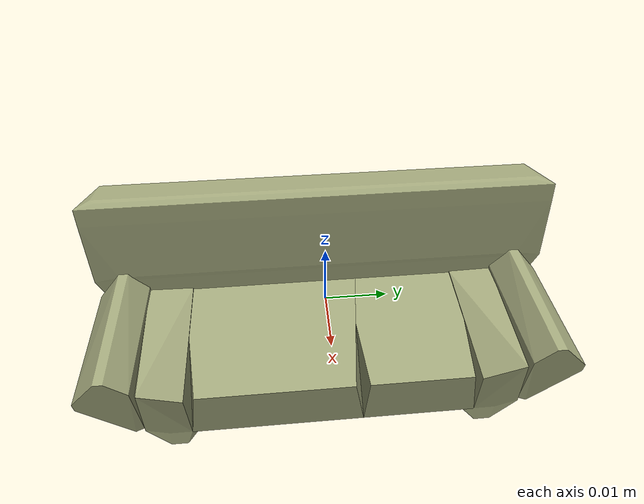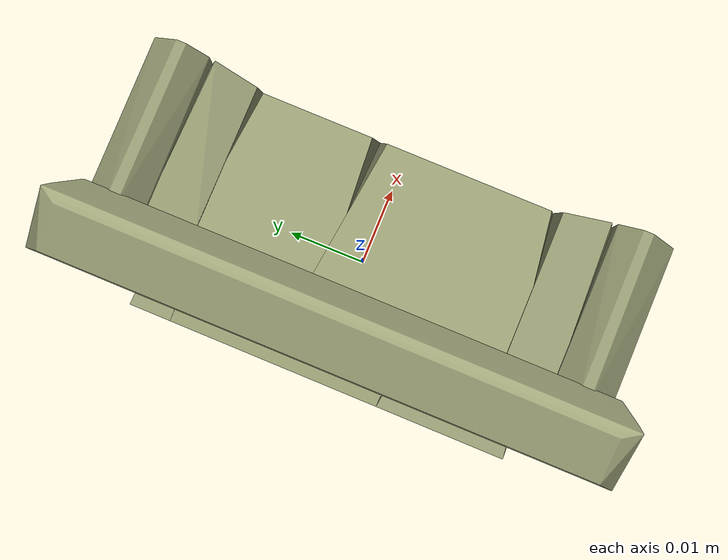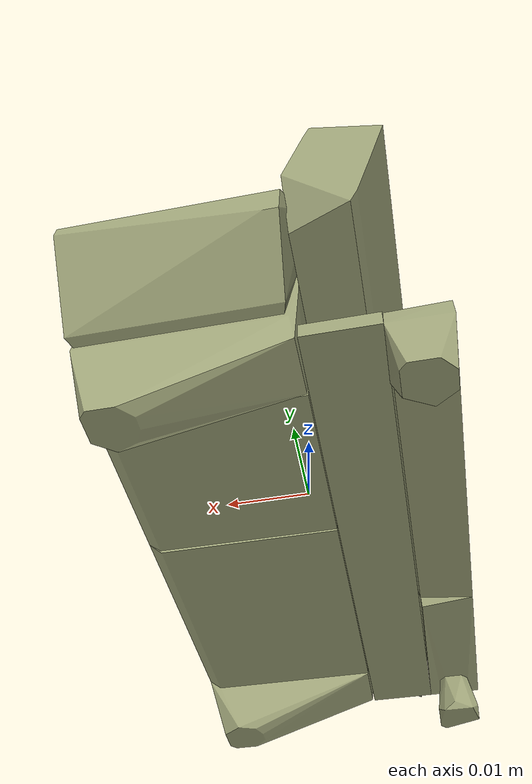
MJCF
<mujoco model="shapenetsem17">
  <asset>
    <mesh file="meshes/shapenetsem17/shapenetsem17_0.stl" name="shapenetsem17_0" scale="0.8 0.8 0.8"/>
    <mesh file="meshes/shapenetsem17/shapenetsem17_1.stl" name="shapenetsem17_1" scale="0.8 0.8 0.8"/>
    <mesh file="meshes/shapenetsem17/shapenetsem17_2.stl" name="shapenetsem17_2" scale="0.8 0.8 0.8"/>
    <mesh file="meshes/shapenetsem17/shapenetsem17_3.stl" name="shapenetsem17_3" scale="0.8 0.8 0.8"/>
    <mesh file="meshes/shapenetsem17/shapenetsem17_4.stl" name="shapenetsem17_4" scale="0.8 0.8 0.8"/>
    <mesh file="meshes/shapenetsem17/shapenetsem17_5.stl" name="shapenetsem17_5" scale="0.8 0.8 0.8"/>
    <mesh file="meshes/shapenetsem17/shapenetsem17_6.stl" name="shapenetsem17_6" scale="0.8 0.8 0.8"/>
    <mesh file="meshes/shapenetsem17/shapenetsem17_7.stl" name="shapenetsem17_7" scale="0.8 0.8 0.8"/>
    <mesh file="meshes/shapenetsem17/shapenetsem17_8.stl" name="shapenetsem17_8" scale="0.8 0.8 0.8"/>
    <mesh file="meshes/shapenetsem17/shapenetsem17_9.stl" name="shapenetsem17_9" scale="0.8 0.8 0.8"/>
    <mesh file="meshes/shapenetsem17/shapenetsem17_10.stl" name="shapenetsem17_10" scale="0.8 0.8 0.8"/>
    <mesh file="meshes/shapenetsem17/shapenetsem17_11.stl" name="shapenetsem17_11" scale="0.8 0.8 0.8"/>
  </asset>
  <worldbody>
    <body>
      <body name="collision">
        <geom pos="0 0 0" mesh="shapenetsem17_0" type="mesh" solimp="0.998 0.998 0.001" solref="0.001 1" density="100" friction="0.95 0.3 0.1" rgba="0.63 0.65 0.48 1" group="1" condim="4"/>
        <geom pos="0 0 0" mesh="shapenetsem17_1" type="mesh" solimp="0.998 0.998 0.001" solref="0.001 1" density="100" friction="0.95 0.3 0.1" rgba="0.63 0.65 0.48 1" group="1" condim="4"/>
        <geom pos="0 0 0" mesh="shapenetsem17_2" type="mesh" solimp="0.998 0.998 0.001" solref="0.001 1" density="100" friction="0.95 0.3 0.1" rgba="0.63 0.65 0.48 1" group="1" condim="4"/>
        <geom pos="0 0 0" mesh="shapenetsem17_3" type="mesh" solimp="0.998 0.998 0.001" solref="0.001 1" density="100" friction="0.95 0.3 0.1" rgba="0.63 0.65 0.48 1" group="1" condim="4"/>
        <geom pos="0 0 0" mesh="shapenetsem17_4" type="mesh" solimp="0.998 0.998 0.001" solref="0.001 1" density="100" friction="0.95 0.3 0.1" rgba="0.63 0.65 0.48 1" group="1" condim="4"/>
        <geom pos="0 0 0" mesh="shapenetsem17_5" type="mesh" solimp="0.998 0.998 0.001" solref="0.001 1" density="100" friction="0.95 0.3 0.1" rgba="0.63 0.65 0.48 1" group="1" condim="4"/>
        <geom pos="0 0 0" mesh="shapenetsem17_6" type="mesh" solimp="0.998 0.998 0.001" solref="0.001 1" density="100" friction="0.95 0.3 0.1" rgba="0.63 0.65 0.48 1" group="1" condim="4"/>
        <geom pos="0 0 0" mesh="shapenetsem17_7" type="mesh" solimp="0.998 0.998 0.001" solref="0.001 1" density="100" friction="0.95 0.3 0.1" rgba="0.63 0.65 0.48 1" group="1" condim="4"/>
        <geom pos="0 0 0" mesh="shapenetsem17_8" type="mesh" solimp="0.998 0.998 0.001" solref="0.001 1" density="100" friction="0.95 0.3 0.1" rgba="0.63 0.65 0.48 1" group="1" condim="4"/>
        <geom pos="0 0 0" mesh="shapenetsem17_9" type="mesh" solimp="0.998 0.998 0.001" solref="0.001 1" density="100" friction="0.95 0.3 0.1" rgba="0.63 0.65 0.48 1" group="1" condim="4"/>
        <geom pos="0 0 0" mesh="shapenetsem17_10" type="mesh" solimp="0.998 0.998 0.001" solref="0.001 1" density="100" friction="0.95 0.3 0.1" rgba="0.63 0.65 0.48 1" group="1" condim="4"/>
        <geom pos="0 0 0" mesh="shapenetsem17_11" type="mesh" solimp="0.998 0.998 0.001" solref="0.001 1" density="100" friction="0.95 0.3 0.1" rgba="0.63 0.65 0.48 1" group="1" condim="4"/>
      </body>
      <body name="visual">
        <geom pos="0 0 0" mesh="shapenetsem17_0" type="mesh" rgba="0.63 0.65 0.48 1" conaffinity="0" contype="0" group="0" mass="0.0001"/>
        <geom pos="0 0 0" mesh="shapenetsem17_1" type="mesh" rgba="0.63 0.65 0.48 1" conaffinity="0" contype="0" group="0" mass="0.0001"/>
        <geom pos="0 0 0" mesh="shapenetsem17_2" type="mesh" rgba="0.63 0.65 0.48 1" conaffinity="0" contype="0" group="0" mass="0.0001"/>
        <geom pos="0 0 0" mesh="shapenetsem17_3" type="mesh" rgba="0.63 0.65 0.48 1" conaffinity="0" contype="0" group="0" mass="0.0001"/>
        <geom pos="0 0 0" mesh="shapenetsem17_4" type="mesh" rgba="0.63 0.65 0.48 1" conaffinity="0" contype="0" group="0" mass="0.0001"/>
        <geom pos="0 0 0" mesh="shapenetsem17_5" type="mesh" rgba="0.63 0.65 0.48 1" conaffinity="0" contype="0" group="0" mass="0.0001"/>
        <geom pos="0 0 0" mesh="shapenetsem17_6" type="mesh" rgba="0.63 0.65 0.48 1" conaffinity="0" contype="0" group="0" mass="0.0001"/>
        <geom pos="0 0 0" mesh="shapenetsem17_7" type="mesh" rgba="0.63 0.65 0.48 1" conaffinity="0" contype="0" group="0" mass="0.0001"/>
        <geom pos="0 0 0" mesh="shapenetsem17_8" type="mesh" rgba="0.63 0.65 0.48 1" conaffinity="0" contype="0" group="0" mass="0.0001"/>
        <geom pos="0 0 0" mesh="shapenetsem17_9" type="mesh" rgba="0.63 0.65 0.48 1" conaffinity="0" contype="0" group="0" mass="0.0001"/>
        <geom pos="0 0 0" mesh="shapenetsem17_10" type="mesh" rgba="0.63 0.65 0.48 1" conaffinity="0" contype="0" group="0" mass="0.0001"/>
        <geom pos="0 0 0" mesh="shapenetsem17_11" type="mesh" rgba="0.63 0.65 0.48 1" conaffinity="0" contype="0" group="0" mass="0.0001"/>
      </body>
      <site rgba="0 0 0 0" size="0.005" pos="0 0 -0.06" name="bottom_site"/>
      <site rgba="0 0 0 0" size="0.005" pos="0 0 0.04" name="top_site"/>
      <site rgba="0 0 0 0" size="0.005" pos="0.025 0.025 0" name="horizontal_radius_site"/>
    </body>
  </worldbody>
</mujoco>
